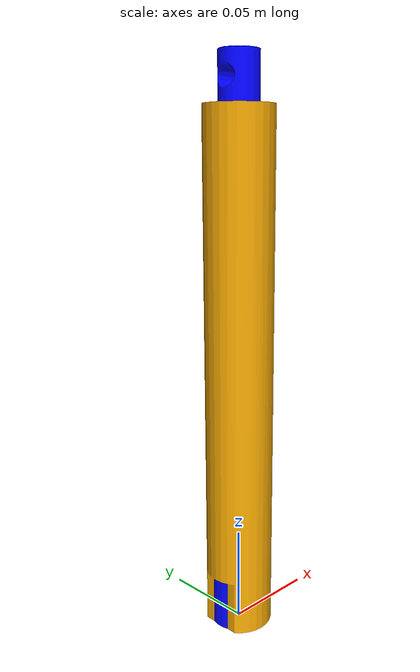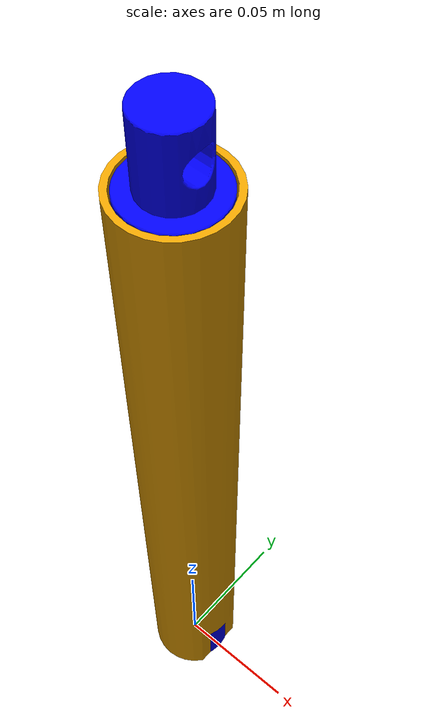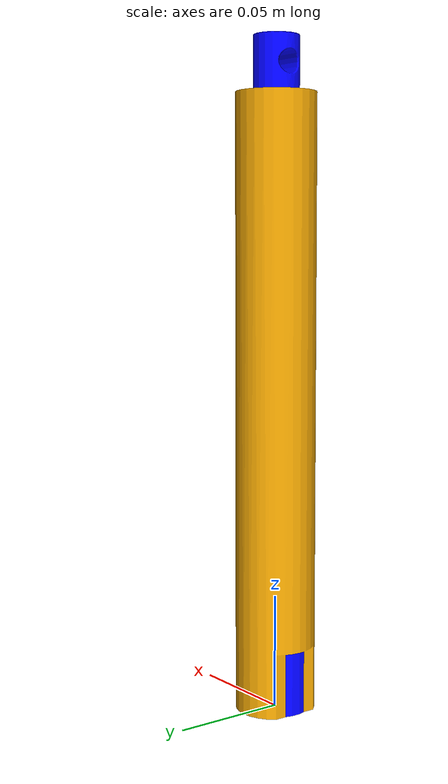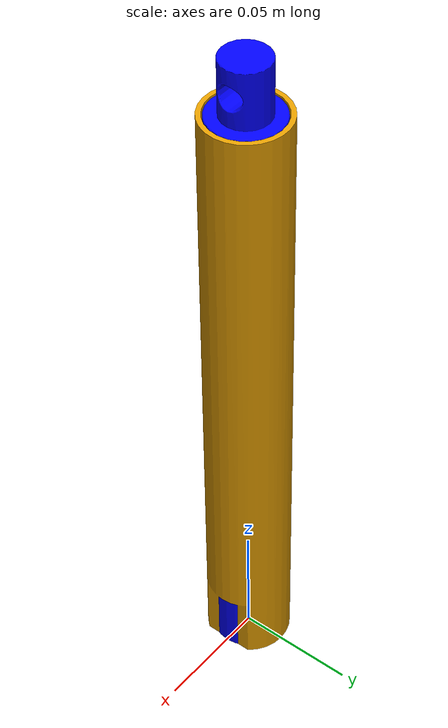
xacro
<?xml version="1.0"?>
<robot name="linear_actuator" xmlns:xacro="http://www.ros.org/wiki/xacro">

  <!-- ===== Base Link ===== -->
  <link name="actuator_outer">
    <visual>
      <origin xyz="0 0 0" rpy="0 0 0"/>
      <geometry>
        <mesh filename="package://linear_actuator/meshes/actuator_outer.stl"/>
      </geometry>
    </visual>

    <collision>
      <geometry>
        <mesh filename="package://linear_actuator/meshes/actuator_outer.stl"/>
      </geometry>
    </collision>

    <inertial>
      <mass value="2.0"/>
      <origin xyz="0 0 0"/>
      <inertia
        ixx="0.01" ixy="0.0" ixz="0.0"
        iyy="0.01" iyz="0.0"
        izz="0.01"/>
    </inertial>
  </link>

  <!-- ===== Rod Link ===== -->
  <link name="actuator_inner">
    <visual>
      <origin xyz="0 0 0" rpy="0 0 0"/>
      <geometry>
        <mesh filename="package://linear_actuator/meshes/actuator_inner.stl"/>
      </geometry>
      <material name="blue">
        <color rgba="0 0 1 1.0"/>
      </material>
    </visual>

    <collision>
      <geometry>
        <mesh filename="package://linear_actuator/meshes/actuator_inner.stl"/>
      </geometry>
    </collision>

    <inertial>
      <mass value="1.0"/>
      <origin xyz="0 0 0"/>
      <inertia
        ixx="0.005" ixy="0.0" ixz="0.0"
        iyy="0.005" iyz="0.0"
        izz="0.005"/>
    </inertial>
  </link>

  <!-- ===== Prismatic Joint ===== -->
  <joint name="actuator_extension_joint" type="prismatic">
    <parent link="actuator_outer"/>
    <child link="actuator_inner"/>

    <!-- Rod slides along Z -->
    <axis xyz="0 0 1"/>

    <!-- Start position of rod relative to base -->
    <origin xyz="0 0 0" rpy="0 0 0"/>

    <!-- Stroke limits -->
    <limit
      lower="0.0"
      upper="0.25"
      effort="500"
      velocity="0.045"/>
  </joint>

</robot>
